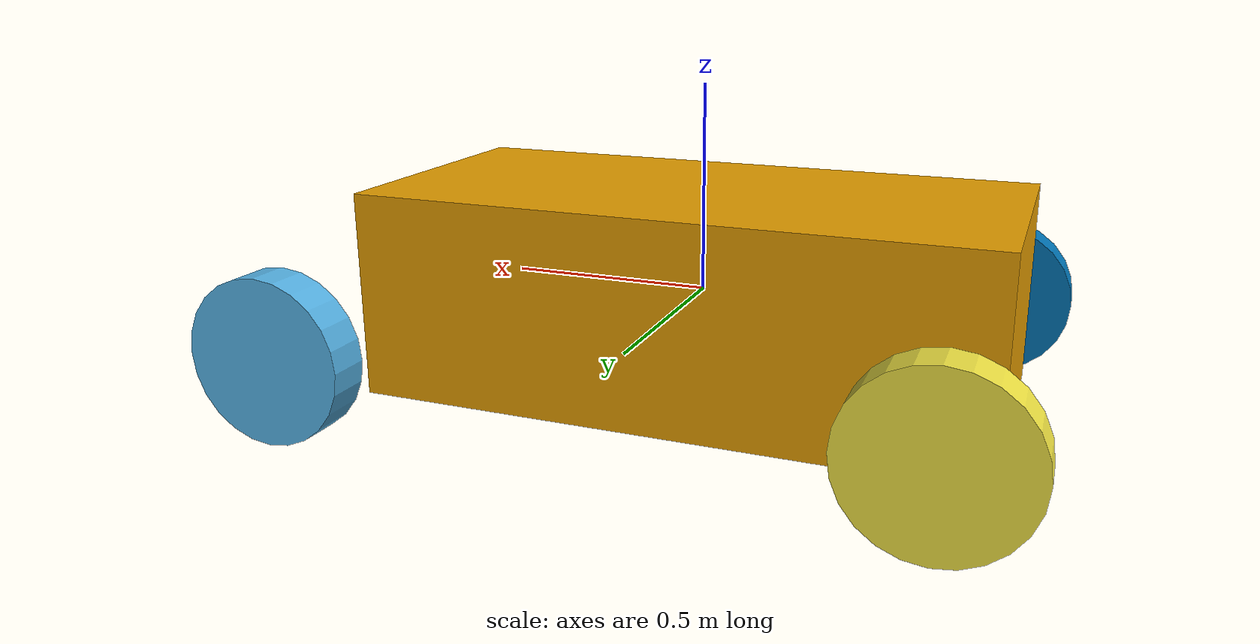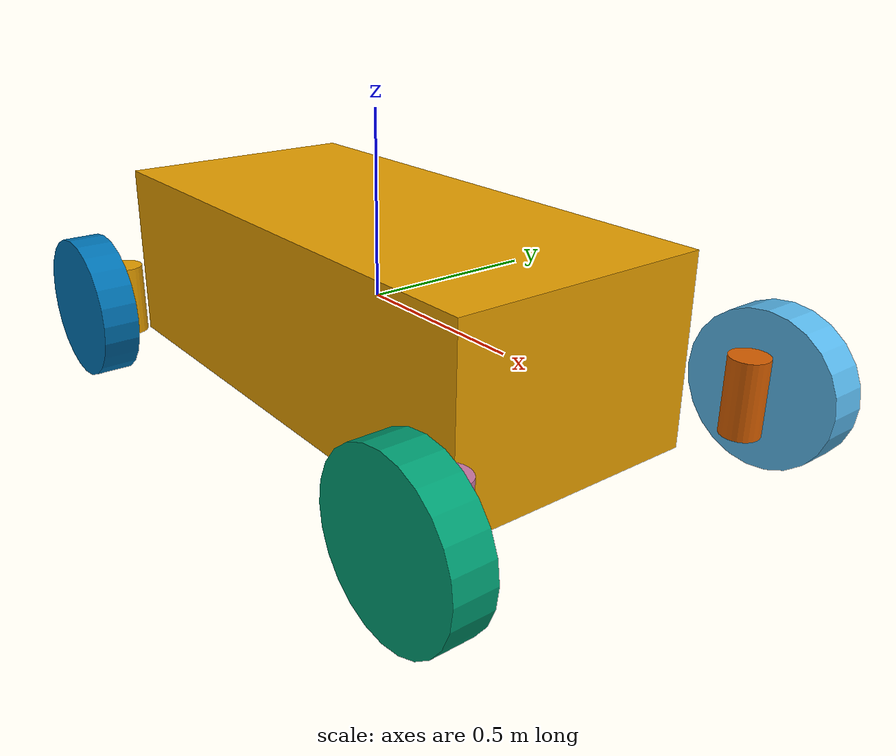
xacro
<?xml version="1.0"?>

<robot xmlns:xacro="http://www.ros.org/wiki/xacro">

  <!-- Define wheel radius, suspension parameters, and car dimensions -->
  <xacro:property name="wheel_radius" value="0.2"/>
  <xacro:property name="suspension_length" value="0.2"/>
  <xacro:property name="track_width" value="0.7"/>
  <xacro:property name="wheelbase" value="1.5"/>
  <xacro:property name="steering_radius" value="0.1"/>
  <xacro:property name="suspension_joint_with_chassis_offset_z" value="0.1"/>
  <xacro:property name="suspension_joint_with_chassis_offset_y" value="0.1"/>
  <xacro:property name="suspension_joint_with_chassis_offset_x" value="0.1"/>

  <!-- Car body -->
  <link name="chassis">
    <visual>
      <geometry>
        <box size="${wheelbase} ${track_width} 0.5"/>
      </geometry>
    </visual>
    <collision>
      <geometry>
        <box size="${wheelbase} ${track_width} 0.5"/>
      </geometry>
    </collision>
  </link>

  <!-- Front left wheel -->
  <joint name="front_left_steering_joint" type="revolute">
    <origin xyz="${wheelbase / 2 + suspension_joint_with_chassis_offset_x} ${track_width / 2 + suspension_joint_with_chassis_offset_y} -${suspension_joint_with_chassis_offset_z}"/>
    <parent link="chassis"/>
    <child link="front_left_suspension"/>
    <axis xyz="0 0 1"/>
    <limit effort="100" velocity="1.0"/>
  </joint>

  <!-- Front right wheel -->
  <joint name="front_right_steering_joint" type="revolute">
    <origin xyz="${wheelbase / 2 + suspension_joint_with_chassis_offset_x} -${track_width / 2 + suspension_joint_with_chassis_offset_y} -${suspension_joint_with_chassis_offset_z}"/>
    <parent link="chassis"/>
    <child link="front_right_suspension"/>
    <axis xyz="0 0 1"/>
    <limit effort="100" velocity="1.0"/>
  </joint>

  <!-- Rear left wheel -->
  <joint name="rear_left_chassis_joint" type="fixed">
    <origin xyz="-${wheelbase / 2 - suspension_joint_with_chassis_offset_x} ${track_width / 2 + suspension_joint_with_chassis_offset_y} -${suspension_joint_with_chassis_offset_z}"/>
    <parent link="chassis"/>
    <child link="rear_left_suspension"/>
  </joint>

  <!-- Rear ight wheel -->
  <joint name="rear_right_chassis_joint" type="fixed">
    <origin xyz="-${wheelbase / 2 - suspension_joint_with_chassis_offset_x} -${track_width / 2 + suspension_joint_with_chassis_offset_y} -${suspension_joint_with_chassis_offset_z}"/>
    <parent link="chassis"/>
    <child link="rear_right_suspension"/>
  </joint>

  <!-- Front left wheel -->
  <link name="front_left_wheel">
    <visual>
      <geometry>
        <cylinder length="0.1" radius="${wheel_radius}"/>
      </geometry>
      <origin rpy="1.571 0 0" xyz="0 0 0"/>
    </visual>
    <collision>
      <geometry>
        <cylinder length="0.1" radius="${wheel_radius}"/>
      </geometry>
      <origin rpy="1.571 0 0" xyz="0 0 0"/>
    </collision>
    <inertial>
      <origin rpy="1.571 0 0" xyz="0 0 0"/>
      <mass value="1.0"/>
      <inertia ixx="0.1" ixy="0.0" ixz="0.0" iyy="0.1" iyz="0.0" izz="0.1"/>
    </inertial>
  </link>

  <!-- Front right wheel -->
  <link name="front_right_wheel">
    <visual>
      <geometry>
        <cylinder length="0.1" radius="${wheel_radius}"/>
      </geometry>
      <origin rpy="1.571 0 0" xyz="0 0 0"/>
    </visual>
    <collision>
      <geometry>
        <cylinder length="0.1" radius="${wheel_radius}"/>
      </geometry>
      <origin rpy="1.571 0 0" xyz="0 0 0"/>
    </collision>
    <inertial>
      <origin rpy="1.571 0 0" xyz="0 0 0"/>
      <mass value="1.0"/>
      <inertia ixx="0.1" ixy="0.0" ixz="0.0" iyy="0.1" iyz="0.0" izz="0.1"/>
    </inertial>
  </link>

  <!-- Rear left wheel -->
  <link name="rear_left_wheel">
    <visual>
      <geometry>
        <cylinder length="0.1" radius="${wheel_radius}"/>
      </geometry>
      <origin rpy="1.571 0 0" xyz="0 0 0"/>
    </visual>
    <collision>
      <geometry>
        <cylinder length="0.1" radius="${wheel_radius}"/>
      </geometry>
      <origin rpy="1.571 0 0" xyz="0 0 0"/>
    </collision>
    <inertial>
      <origin rpy="1.571 0 0" xyz="0 0 0"/>
      <mass value="1.0"/>
      <inertia ixx="0.1" ixy="0.0" ixz="0.0" iyy="0.1" iyz="0.0" izz="0.1"/>
    </inertial>
  </link>

  <!-- Rear right wheel -->
  <link name="rear_right_wheel">
    <visual>
      <geometry>
        <cylinder length="0.1" radius="${wheel_radius}"/>
      </geometry>
      <origin rpy="1.571 0 0" xyz="0 0 0"/>
    </visual>
    <collision>
      <geometry>
        <cylinder length="0.1" radius="${wheel_radius}"/>
      </geometry>
      <origin rpy="1.571 0 0" xyz="0 0 0"/>
    </collision>
    <inertial>
      <origin rpy="1.571 0 0" xyz="0 0 0"/>
      <mass value="1.0"/>
      <inertia ixx="0.1" ixy="0.0" ixz="0.0" iyy="0.1" iyz="0.0" izz="0.1"/>
    </inertial>
  </link>

  <!-- Front left suspension -->
  <link name="front_left_suspension">
    <visual>
      <geometry>
        <cylinder length="${suspension_length}" radius="0.05"/>
      </geometry>
    </visual>
    <collision>
      <geometry>
        <cylinder length="${suspension_length}" radius="0.05"/>
      </geometry>
    </collision>
    <inertial>
      <origin xyz="0 0 0"/>
      <mass value="0.5"/>
      <inertia ixx="0.01" ixy="0.0" ixz="0.0" iyy="0.01" iyz="0.0" izz="0.01"/>
    </inertial>
  </link>

  <!-- Front right suspension -->
  <link name="front_right_suspension">
    <visual>
      <geometry>
        <cylinder length="${suspension_length}" radius="0.05"/>
      </geometry>
    </visual>
    <collision>
      <geometry>
        <cylinder length="${suspension_length}" radius="0.05"/>
      </geometry>
    </collision>
    <inertial>
      <origin xyz="0 0 0"/>
      <mass value="0.5"/>
      <inertia ixx="0.01" ixy="0.0" ixz="0.0" iyy="0.01" iyz="0.0" izz="0.01"/>
    </inertial>
  </link>

  <!-- Rear left suspension -->
  <link name="rear_left_suspension">
    <visual>
      <geometry>
        <cylinder length="${suspension_length}" radius="0.05"/>
      </geometry>
    </visual>
    <collision>
      <geometry>
        <cylinder length="${suspension_length}" radius="0.05"/>
      </geometry>
    </collision>
    <inertial>
      <origin xyz="0 0 0"/>
      <mass value="0.5"/>
      <inertia ixx="0.01" ixy="0.0" ixz="0.0" iyy="0.01" iyz="0.0" izz="0.01"/>
    </inertial>
  </link>

  <!-- Rear right suspension -->
  <link name="rear_right_suspension">
    <visual>
      <geometry>
        <cylinder length="${suspension_length}" radius="0.05"/>
      </geometry>
    </visual>
    <collision>
      <geometry>
        <cylinder length="${suspension_length}" radius="0.05"/>
      </geometry>
    </collision>
    <inertial>
      <origin xyz="0 0 0"/>
      <mass value="0.5"/>
      <inertia ixx="0.01" ixy="0.0" ixz="0.0" iyy="0.01" iyz="0.0" izz="0.01"/>
    </inertial>
  </link>

  <!-- Connect front left wheel to suspension -->
  <joint name="front_left_suspension_joint" type="prismatic">
    <origin xyz="0 ${steering_radius} 0"/>
    <parent link="front_left_suspension"/>
    <child link="front_left_wheel"/>
    <axis xyz="0 0 1"/>
    <limit lower="-${suspension_length}" upper="0"/>
    <dynamics damping="0.7"/>
  </joint>

  <!-- Connect front right wheel to suspension -->
  <joint name="front_right_suspension_joint" type="prismatic">
    <origin xyz="0 -${steering_radius} 0"/>
    <parent link="front_right_suspension"/>
    <child link="front_right_wheel"/>
    <axis xyz="0 0 1"/>
    <limit lower="-${suspension_length}" upper="0"/>
    <dynamics damping="0.7"/>
  </joint>

  <!-- Connect rear left wheel to suspension -->
  <joint name="rear_left_suspension_joint" type="prismatic">
    <origin xyz="0 ${steering_radius} 0"/>
    <parent link="rear_left_suspension"/>
    <child link="rear_left_wheel"/>
    <axis xyz="0 0 1"/>
    <limit lower="-${suspension_length}" upper="0"/>
    <dynamics damping="0.7"/>
  </joint>

  <!-- Connect rear right wheel to suspension -->
  <joint name="rear_right_suspension_joint" type="prismatic">
    <origin xyz="0 -${steering_radius} 0"/>
    <parent link="rear_right_suspension"/>
    <child link="rear_right_wheel"/>
    <axis xyz="0 0 1"/>
    <limit lower="-${suspension_length}" upper="0"/>
    <dynamics damping="0.7"/>
  </joint>
</robot>
